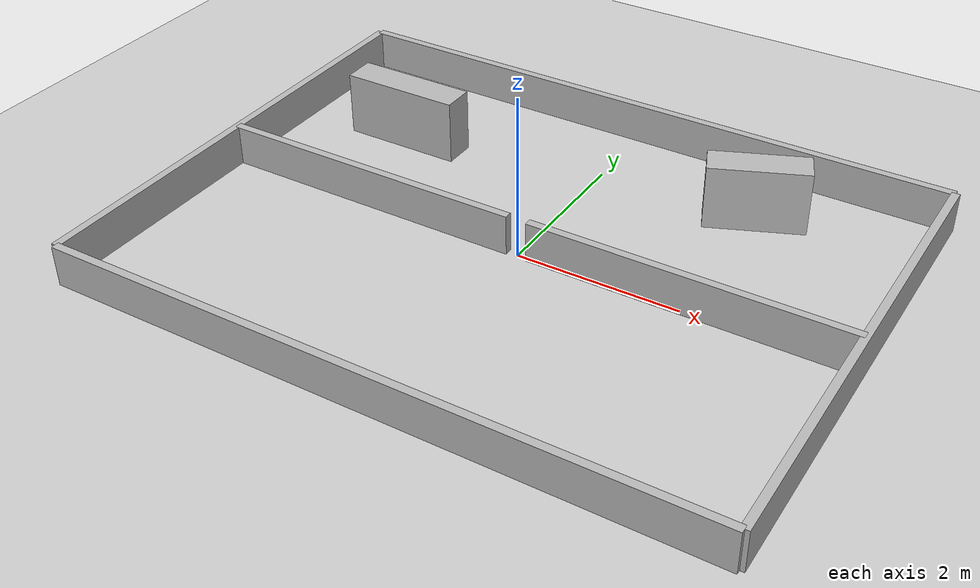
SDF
<?xml version="1.0"?>
<sdf version="1.6">
  <world name="reconfig_warehouse">

    <include>
      <uri>model://ground_plane</uri>
    </include>

    <include>
      <uri>model://sun</uri>
    </include>

    <!-- Outer boundary walls: room is 8m (x) by 6m (y), wall height 0.5m -->

    <model name="wall_north">
      <static>true</static>
      <pose>0 3 0.25 0 0 0</pose>
      <link name="link">
        <collision name="collision">
          <geometry><box><size>8 0.1 0.5</size></box></geometry>
        </collision>
        <visual name="visual">
          <geometry><box><size>8 0.1 0.5</size></box></geometry>
        </visual>
      </link>
    </model>

    <model name="wall_south">
      <static>true</static>
      <pose>0 -3 0.25 0 0 0</pose>
      <link name="link">
        <collision name="collision">
          <geometry><box><size>8 0.1 0.5</size></box></geometry>
        </collision>
        <visual name="visual">
          <geometry><box><size>8 0.1 0.5</size></box></geometry>
        </visual>
      </link>
    </model>

    <model name="wall_east">
      <static>true</static>
      <pose>4 0 0.25 0 0 1.5708</pose>
      <link name="link">
        <collision name="collision">
          <geometry><box><size>6 0.1 0.5</size></box></geometry>
        </collision>
        <visual name="visual">
          <geometry><box><size>6 0.1 0.5</size></box></geometry>
        </visual>
      </link>
    </model>

    <model name="wall_west">
      <static>true</static>
      <pose>-4 0 0.25 0 0 1.5708</pose>
      <link name="link">
        <collision name="collision">
          <geometry><box><size>6 0.1 0.5</size></box></geometry>
        </collision>
        <visual name="visual">
          <geometry><box><size>6 0.1 0.5</size></box></geometry>
        </visual>
      </link>
    </model>

    <model name="divider_left">
      <static>true</static>
      <pose>-2.0625 0 0.25 0 0 0</pose>
      <link name="link">
        <collision name="collision">
          <geometry><box><size>3.875 0.1 0.5</size></box></geometry>
        </collision>
        <visual name="visual">
          <geometry><box><size>3.875 0.1 0.5</size></box></geometry>
        </visual>
      </link>
    </model>

    <model name="divider_right">
      <static>true</static>
      <pose>2.0625 0 0.25 0 0 0</pose>
      <link name="link">
        <collision name="collision">
          <geometry><box><size>3.875 0.1 0.5</size></box></geometry>
        </collision>
        <visual name="visual">
          <geometry><box><size>3.875 0.1 0.5</size></box></geometry>
        </visual>
      </link>
    </model>

    <!-- A couple of simple "shelf" obstacles in the open zone for mapping realism -->

    <model name="shelf_1">
      <static>true</static>
      <pose>-2.5 1.5 0.4 0 0 0</pose>
      <link name="link">
        <collision name="collision">
          <geometry><box><size>1.5 0.4 0.8</size></box></geometry>
        </collision>
        <visual name="visual">
          <geometry><box><size>1.5 0.4 0.8</size></box></geometry>
        </visual>
      </link>
    </model>

    <model name="shelf_2">
      <static>true</static>
      <pose>2.0 2.0 0.4 0 0 0.4</pose>
      <link name="link">
        <collision name="collision">
          <geometry><box><size>1.2 0.4 0.8</size></box></geometry>
        </collision>
        <visual name="visual">
          <geometry><box><size>1.2 0.4 0.8</size></box></geometry>
        </visual>
      </link>
    </model>

  </world>
</sdf>
